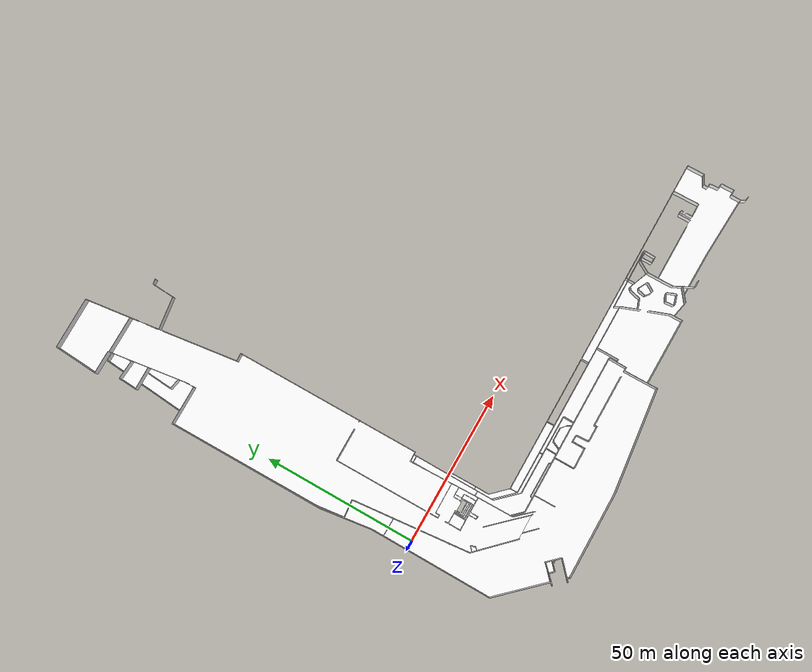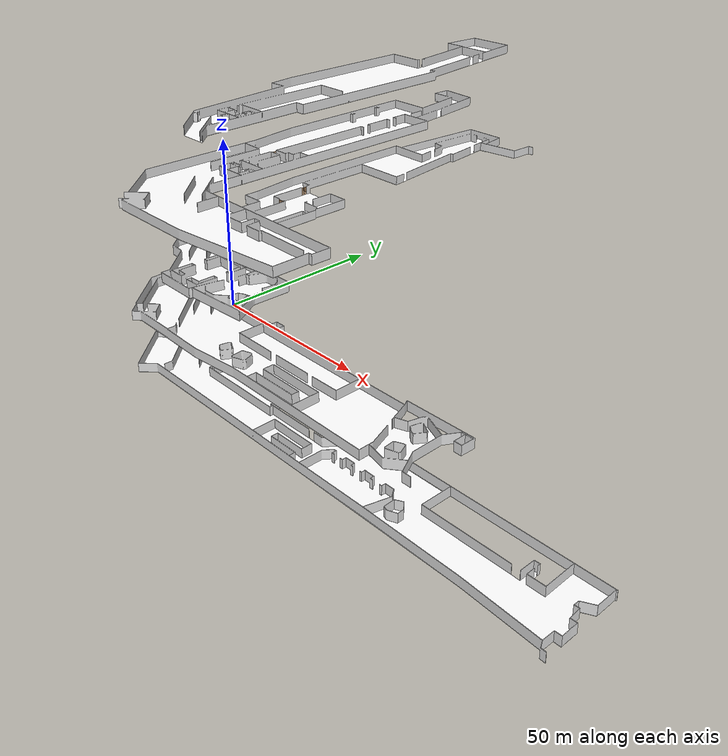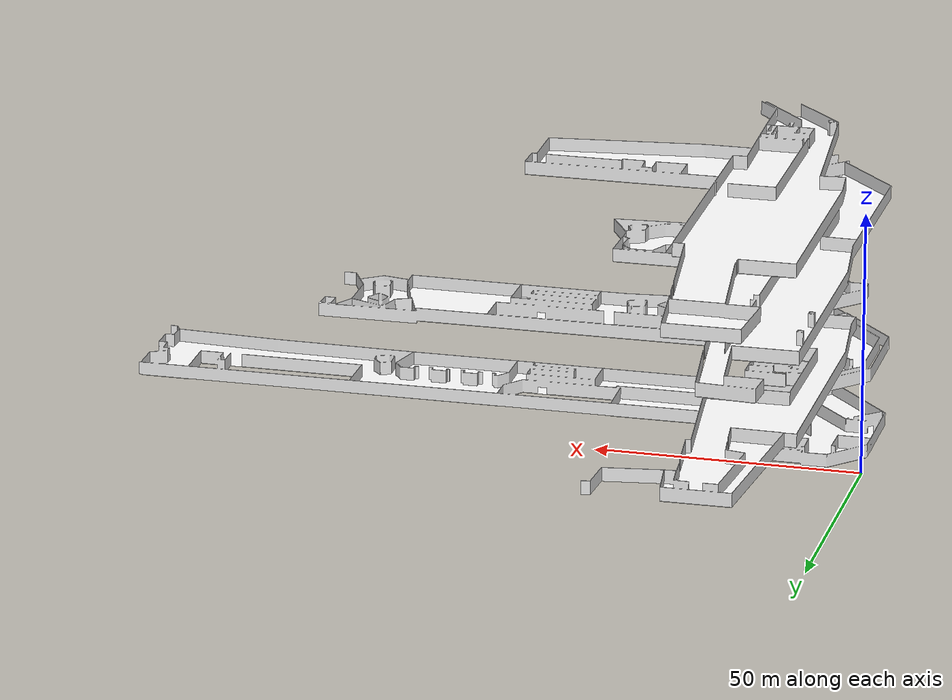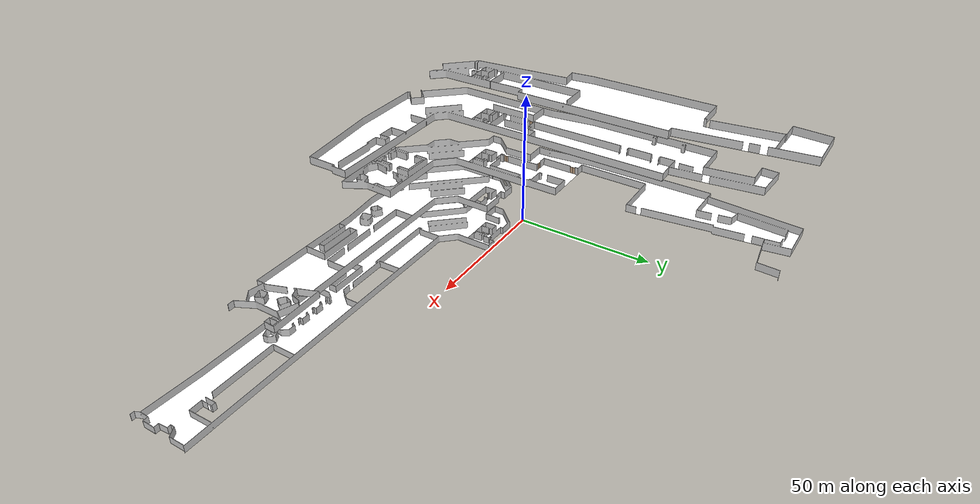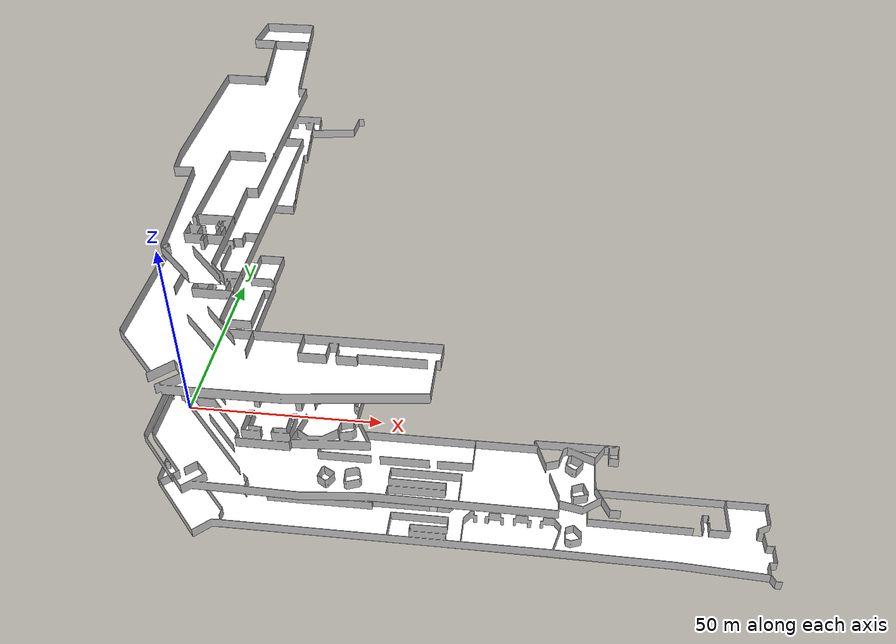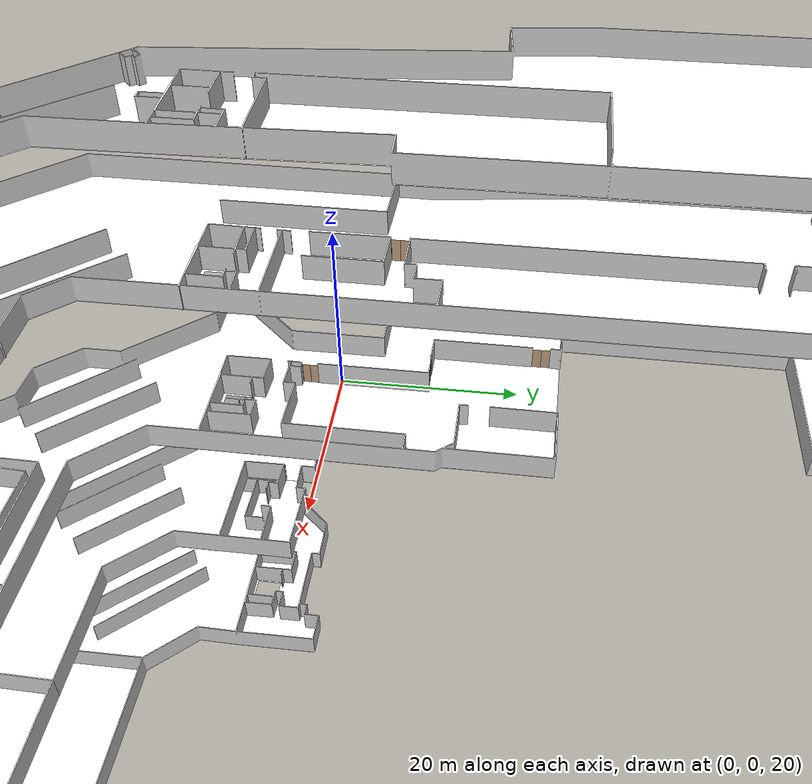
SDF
<sdf version="1.7">
 <world name="world">
  <include><uri>model://sun</uri></include>
  <include><name>trl_TRL_L2</name><uri>model://trl_TRL_L2</uri></include>
  <include><name>trl_TRL_L3</name><uri>model://trl_TRL_L3</uri><pose>0 0 15.0 0 0 0</pose></include>
  <model name="maker1_L4_door">
   <pose>6.531014713149659 22.14812666859816 30.0 0 0 1.5928225442787496</pose>
   <link name="right">
    <pose>0.46308714440115145 0 1.11 0 0 0</pose>
    <visual name="right_visual">
     <geometry><box><size>0.9161742888023029 0.03 2.2</size></box></geometry>
     <material><ambient>0.5 0.25 0 0.6</ambient><diffuse>0.5 0.25 0 0.6</diffuse></material>
    </visual>
    <collision name="right_collision">
     <geometry><box><size>0.9161742888023029 0.03 2.2</size></box></geometry>
     <surface><contact><collide_bitmask>0x02</collide_bitmask></contact></surface>
    </collision>
    <inertial>
     <mass>50.0</mass>
     <inertia><ixx>20.17041666666667</ixx><iyy>23.664063864426694</iyy><izz>3.501147197760023</izz></inertia>
    </inertial>
   </link>
   <joint name="right_joint" type="revolute">
    <parent>world</parent>
    <child>right</child>
    <axis><xyz>0 0 -1</xyz><limit><lower>0</lower><upper>1.57</upper></limit></axis>
    <pose>0.46308714440115145 0 0 0 0 0</pose>
   </joint>
   <link name="left">
    <pose>-0.46308714440115145 0 1.11 0 0 0</pose>
    <visual name="left_visual">
     <geometry><box><size>0.9161742888023029 0.03 2.2</size></box></geometry>
     <material><ambient>0.5 0.25 0 0.6</ambient><diffuse>0.5 0.25 0 0.6</diffuse></material>
    </visual>
    <collision name="left_collision">
     <geometry><box><size>0.9161742888023029 0.03 2.2</size></box></geometry>
     <surface><contact><collide_bitmask>0x02</collide_bitmask></contact></surface>
    </collision>
    <inertial>
     <mass>50.0</mass>
     <inertia><ixx>20.17041666666667</ixx><iyy>23.664063864426694</iyy><izz>3.501147197760023</izz></inertia>
    </inertial>
   </link>
   <joint name="left_joint" type="revolute">
    <parent>world</parent>
    <child>left</child>
    <axis><xyz>0 0 -1</xyz><limit><lower>-1.57</lower><upper>0</upper></limit></axis>
    <pose>-0.46308714440115145 0 0 0 0 0</pose>
   </joint>
   <plugin name="door" filename="libdoor.so">
    <v_max_door>0.5</v_max_door>
    <a_max_door>0.3</a_max_door>
    <a_nom_door>0.15</a_nom_door>
    <dx_min_door>0.01</dx_min_door>
    <f_max_door>500.0</f_max_door>
    <door name="maker1_L4_door" type="DoubleSwingDoor" left_joint_name="left_joint" right_joint_name="right_joint"/>
   </plugin>
  </model>
  <model name="maker2_L4_door">
   <pose>9.919645891914211 11.242215862442478 30.0 0 0 -3.120241439812834</pose>
   <link name="right">
    <pose>0.47527167395821235 0 1.11 0 0 0</pose>
    <visual name="right_visual">
     <geometry><box><size>0.9405433479164247 0.03 2.2</size></box></geometry>
     <material><ambient>0.5 0.25 0 0.6</ambient><diffuse>0.5 0.25 0 0.6</diffuse></material>
    </visual>
    <collision name="right_collision">
     <geometry><box><size>0.9405433479164247 0.03 2.2</size></box></geometry>
     <surface><contact><collide_bitmask>0x02</collide_bitmask></contact></surface>
    </collision>
    <inertial>
     <mass>50.0</mass>
     <inertia><ixx>20.17041666666667</ixx><iyy>23.852590788790994</iyy><izz>3.68967412212432</izz></inertia>
    </inertial>
   </link>
   <joint name="right_joint" type="revolute">
    <parent>world</parent>
    <child>right</child>
    <axis><xyz>0 0 -1</xyz><limit><lower>0</lower><upper>1.57</upper></limit></axis>
    <pose>0.47527167395821235 0 0 0 0 0</pose>
   </joint>
   <link name="left">
    <pose>-0.47527167395821235 0 1.11 0 0 0</pose>
    <visual name="left_visual">
     <geometry><box><size>0.9405433479164247 0.03 2.2</size></box></geometry>
     <material><ambient>0.5 0.25 0 0.6</ambient><diffuse>0.5 0.25 0 0.6</diffuse></material>
    </visual>
    <collision name="left_collision">
     <geometry><box><size>0.9405433479164247 0.03 2.2</size></box></geometry>
     <surface><contact><collide_bitmask>0x02</collide_bitmask></contact></surface>
    </collision>
    <inertial>
     <mass>50.0</mass>
     <inertia><ixx>20.17041666666667</ixx><iyy>23.852590788790994</iyy><izz>3.68967412212432</izz></inertia>
    </inertial>
   </link>
   <joint name="left_joint" type="revolute">
    <parent>world</parent>
    <child>left</child>
    <axis><xyz>0 0 -1</xyz><limit><lower>-1.57</lower><upper>0</upper></limit></axis>
    <pose>-0.47527167395821235 0 0 0 0 0</pose>
   </joint>
   <plugin name="door" filename="libdoor.so">
    <v_max_door>0.5</v_max_door>
    <a_max_door>0.3</a_max_door>
    <a_nom_door>0.15</a_nom_door>
    <dx_min_door>0.01</dx_min_door>
    <f_max_door>500.0</f_max_door>
    <door name="maker2_L4_door" type="DoubleSwingDoor" left_joint_name="left_joint" right_joint_name="right_joint"/>
   </plugin>
  </model>
  <model name="firefighting_L4_door">
   <pose>11.590870349758365 -0.5781071380827143 30.0 0 0 1.5664990934188912</pose>
   <link name="right">
    <pose>0.4160457620447147 0 1.11 0 0 0</pose>
    <visual name="right_visual">
     <geometry><box><size>0.8220915240894294 0.03 2.2</size></box></geometry>
     <material><ambient>0.5 0.25 0 0.6</ambient><diffuse>0.5 0.25 0 0.6</diffuse></material>
    </visual>
    <collision name="right_collision">
     <geometry><box><size>0.8220915240894294 0.03 2.2</size></box></geometry>
     <surface><contact><collide_bitmask>0x02</collide_bitmask></contact></surface>
    </collision>
    <inertial>
     <mass>50.0</mass>
     <inertia><ixx>20.17041666666667</ixx><iyy>22.982643641582012</iyy><izz>2.819726974915337</izz></inertia>
    </inertial>
   </link>
   <joint name="right_joint" type="revolute">
    <parent>world</parent>
    <child>right</child>
    <axis><xyz>0 0 1</xyz><limit><lower>0</lower><upper>1.57</upper></limit></axis>
    <pose>0.4160457620447147 0 0 0 0 0</pose>
   </joint>
   <link name="left">
    <pose>-0.4160457620447147 0 1.11 0 0 0</pose>
    <visual name="left_visual">
     <geometry><box><size>0.8220915240894294 0.03 2.2</size></box></geometry>
     <material><ambient>0.5 0.25 0 0.6</ambient><diffuse>0.5 0.25 0 0.6</diffuse></material>
    </visual>
    <collision name="left_collision">
     <geometry><box><size>0.8220915240894294 0.03 2.2</size></box></geometry>
     <surface><contact><collide_bitmask>0x02</collide_bitmask></contact></surface>
    </collision>
    <inertial>
     <mass>50.0</mass>
     <inertia><ixx>20.17041666666667</ixx><iyy>22.982643641582012</iyy><izz>2.819726974915337</izz></inertia>
    </inertial>
   </link>
   <joint name="left_joint" type="revolute">
    <parent>world</parent>
    <child>left</child>
    <axis><xyz>0 0 1</xyz><limit><lower>-1.57</lower><upper>0</upper></limit></axis>
    <pose>-0.4160457620447147 0 0 0 0 0</pose>
   </joint>
   <plugin name="door" filename="libdoor.so">
    <v_max_door>0.5</v_max_door>
    <a_max_door>0.3</a_max_door>
    <a_nom_door>0.15</a_nom_door>
    <dx_min_door>0.01</dx_min_door>
    <f_max_door>500.0</f_max_door>
    <door name="firefighting_L4_door" type="DoubleSwingDoor" left_joint_name="left_joint" right_joint_name="right_joint"/>
   </plugin>
  </model>
  <include><name>trl_TRL_L4</name><uri>model://trl_TRL_L4</uri><pose>0 0 30.0 0 0 0</pose></include>
  <model name="smokestop1_L5_door">
   <pose>10.892956528658836 8.592483232362326 45.0 0 0 1.5798899583706112</pose>
   <link name="right">
    <pose>0.43942948406621946 0 1.11 0 0 0</pose>
    <visual name="right_visual">
     <geometry><box><size>0.8688589681324389 0.03 2.2</size></box></geometry>
     <material><ambient>0.5 0.25 0 0.6</ambient><diffuse>0.5 0.25 0 0.6</diffuse></material>
    </visual>
    <collision name="right_collision">
     <geometry><box><size>0.8688589681324389 0.03 2.2</size></box></geometry>
     <surface><contact><collide_bitmask>0x02</collide_bitmask></contact></surface>
    </collision>
    <inertial>
     <mass>50.0</mass>
     <inertia><ixx>20.17041666666667</ixx><iyy>23.31214961043403</iyy><izz>3.1492329437673607</izz></inertia>
    </inertial>
   </link>
   <joint name="right_joint" type="revolute">
    <parent>world</parent>
    <child>right</child>
    <axis><xyz>0 0 1</xyz><limit><lower>0</lower><upper>1.57</upper></limit></axis>
    <pose>0.43942948406621946 0 0 0 0 0</pose>
   </joint>
   <link name="left">
    <pose>-0.43942948406621946 0 1.11 0 0 0</pose>
    <visual name="left_visual">
     <geometry><box><size>0.8688589681324389 0.03 2.2</size></box></geometry>
     <material><ambient>0.5 0.25 0 0.6</ambient><diffuse>0.5 0.25 0 0.6</diffuse></material>
    </visual>
    <collision name="left_collision">
     <geometry><box><size>0.8688589681324389 0.03 2.2</size></box></geometry>
     <surface><contact><collide_bitmask>0x02</collide_bitmask></contact></surface>
    </collision>
    <inertial>
     <mass>50.0</mass>
     <inertia><ixx>20.17041666666667</ixx><iyy>23.31214961043403</iyy><izz>3.1492329437673607</izz></inertia>
    </inertial>
   </link>
   <joint name="left_joint" type="revolute">
    <parent>world</parent>
    <child>left</child>
    <axis><xyz>0 0 1</xyz><limit><lower>-1.57</lower><upper>0</upper></limit></axis>
    <pose>-0.43942948406621946 0 0 0 0 0</pose>
   </joint>
   <plugin name="door" filename="libdoor.so">
    <v_max_door>0.5</v_max_door>
    <a_max_door>0.3</a_max_door>
    <a_nom_door>0.15</a_nom_door>
    <dx_min_door>0.01</dx_min_door>
    <f_max_door>500.0</f_max_door>
    <door name="smokestop1_L5_door" type="DoubleSwingDoor" left_joint_name="left_joint" right_joint_name="right_joint"/>
   </plugin>
  </model>
  <include><name>trl_TRL_L5</name><uri>model://trl_TRL_L5</uri><pose>0 0 45.0 0 0 0</pose></include>
  <include><name>trl_TRL_L6</name><uri>model://trl_TRL_L6</uri><pose>0 0 60.0 0 0 0</pose></include>
 </world>
</sdf>
